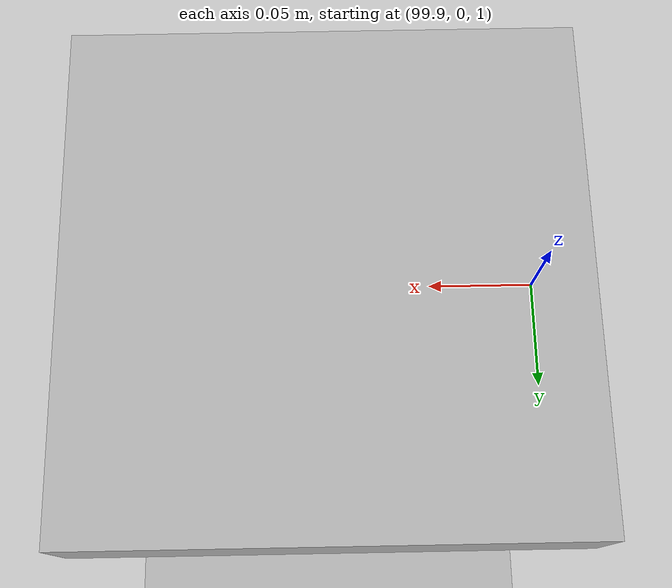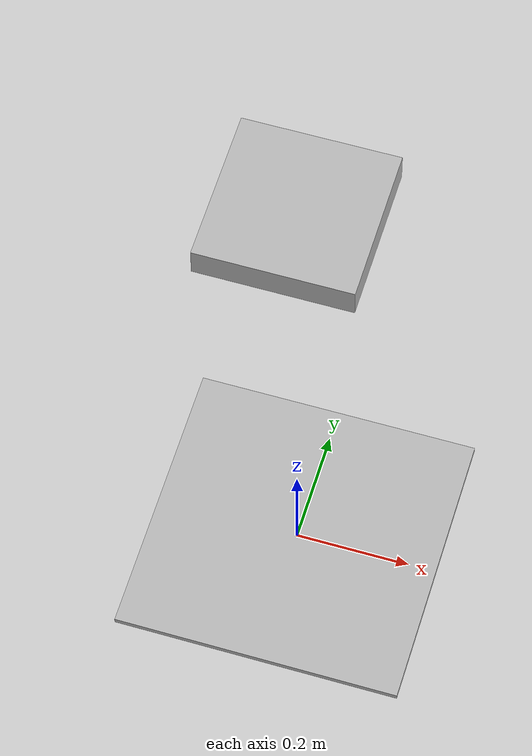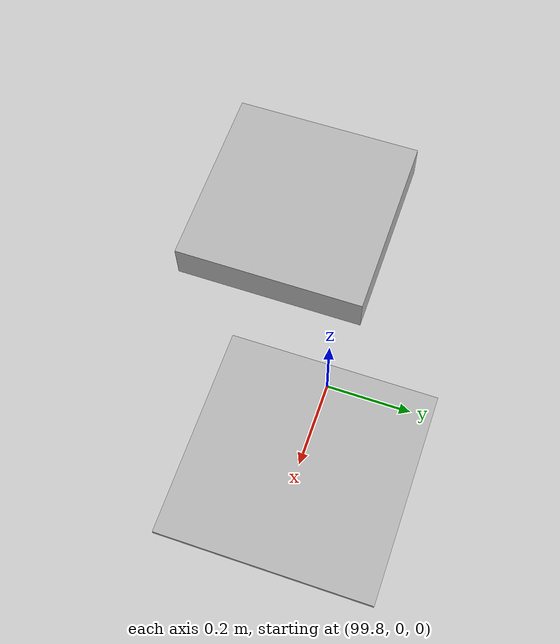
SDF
<?xml version="1.0" ?>
<sdf version="1.6">
  <world name="default">
    <plugin
      filename="gz-sim-apply-link-wrench-system"
      name="gz::sim::systems::ApplyLinkWrench">
    </plugin>

    <physics name="fast" type="ignored">
      <real_time_factor>0</real_time_factor>
    </physics>
    <plugin
      filename="gz-sim-physics-system"
      name="gz::sim::systems::Physics">
    </plugin>
    <plugin
      filename="gz-sim-scene-broadcaster-system"
      name="gz::sim::systems::SceneBroadcaster">
    </plugin>

    <model name="ground_plane">
      <static>true</static>
      <link name="link">
        <collision name="collision">
          <geometry>
            <plane>
              <normal>0 0 1</normal>
              <size>100 100</size>
            </plane>
          </geometry>
        </collision>
        <visual name="visual">
          <geometry>
            <plane>
              <normal>0 0 1</normal>
              <size>100 100</size>
            </plane>
          </geometry>
          <material>
            <ambient>0.8 0.8 0.8 1</ambient>
            <diffuse>0.8 0.8 0.8 1</diffuse>
            <specular>0.8 0.8 0.8 1</specular>
          </material>
        </visual>
      </link>
    </model>
    <model name="joint_position_controller_test">
      <pose>0 0 0.005 0 0 0</pose>
      <link name="base_link">
        <pose>0.0 0.0 0.0 0 0 0</pose>
        <inertial>
          <inertia>
            <ixx>2.501</ixx>
            <ixy>0</ixy>
            <ixz>0</ixz>
            <iyy>2.501</iyy>
            <iyz>0</iyz>
            <izz>5</izz>
          </inertia>
          <mass>120.0</mass>
        </inertial>
        <visual name="base_visual">
          <pose>0.0 0.0 0.0 0 0 0</pose>
          <geometry>
            <box>
              <size>0.5 0.5 0.01</size>
            </box>
          </geometry>
        </visual>
        <collision name="base_collision">
          <pose>0.0 0.0 0.0 0 0 0</pose>
          <geometry>
            <box>
              <size>0.5 0.5 0.01</size>
            </box>
          </geometry>
        </collision>
      </link>
      <link name="rotor">
        <pose>0.0 0.0 1.0 0.0 0 0</pose>
        <inertial>
          <pose>0.0 0.0 0.0 0 0 0</pose>
          <inertia>
            <ixx>0.032</ixx>
            <ixy>0</ixy>
            <ixz>0</ixz>
            <iyy>0.032</iyy>
            <iyz>0</iyz>
            <izz>0.00012</izz>
          </inertia>
          <mass>0.6</mass>
        </inertial>
        <visual name="visual">
          <geometry>
            <box>
              <size>0.25 0.25 0.05</size>
            </box>
          </geometry>
        </visual>
        <collision name="collision">
          <geometry>
            <box>
              <size>0.25 0.25 0.05</size>
            </box>
          </geometry>
        </collision>
      </link>

      <joint name="j1" type="revolute">
        <pose>0 0 -0.5 0 0 0</pose>
        <parent>base_link</parent>
        <child>rotor</child>
        <axis>
          <xyz>0 0 1</xyz>
        </axis>
      </joint>
      <plugin
        filename="gz-sim-joint-position-controller-system"
        name="gz::sim::systems::JointPositionController">
        <joint_name>j1</joint_name>
        <use_velocity_commands>true</use_velocity_commands>
        <initial_position>-2.0</initial_position>
      </plugin>
    </model>

    <model name="joint_position_controller_test_with_max">
      <pose>100 0 0.005 0 0 0</pose>
      <link name="base_link">
        <pose>0.0 0.0 0.0 0 0 0</pose>
        <inertial>
          <inertia>
            <ixx>2.501</ixx>
            <ixy>0</ixy>
            <ixz>0</ixz>
            <iyy>2.501</iyy>
            <iyz>0</iyz>
            <izz>5</izz>
          </inertia>
          <mass>120.0</mass>
        </inertial>
        <visual name="base_visual">
          <pose>0.0 0.0 0.0 0 0 0</pose>
          <geometry>
            <box>
              <size>0.5 0.5 0.01</size>
            </box>
          </geometry>
        </visual>
        <collision name="base_collision">
          <pose>0.0 0.0 0.0 0 0 0</pose>
          <geometry>
            <box>
              <size>0.5 0.5 0.01</size>
            </box>
          </geometry>
        </collision>
      </link>
      <link name="rotor">
        <pose>0.0 0.0 1.0 0.0 0 0</pose>
        <inertial>
          <pose>0.0 0.0 0.0 0 0 0</pose>
          <inertia>
            <ixx>0.032</ixx>
            <ixy>0</ixy>
            <ixz>0</ixz>
            <iyy>0.032</iyy>
            <iyz>0</iyz>
            <izz>0.00012</izz>
          </inertia>
          <mass>0.6</mass>
        </inertial>
        <visual name="visual">
          <geometry>
            <box>
              <size>0.25 0.25 0.05</size>
            </box>
          </geometry>
        </visual>
        <collision name="collision">
          <geometry>
            <box>
              <size>0.25 0.25 0.05</size>
            </box>
          </geometry>
        </collision>
      </link>

      <joint name="j2" type="revolute">
        <pose>0 0 -0.5 0 0 0</pose>
        <parent>base_link</parent>
        <child>rotor</child>
        <axis>
          <xyz>0 0 1</xyz>
        </axis>
      </joint>
      <plugin
        filename="gz-sim-joint-position-controller-system"
        name="gz::sim::systems::JointPositionController">
        <joint_name>j2</joint_name>
        <use_velocity_commands>true</use_velocity_commands>
        <cmd_max>1000</cmd_max>
        <initial_position>-2.0</initial_position>
      </plugin>
    </model>
  </world>
</sdf>
